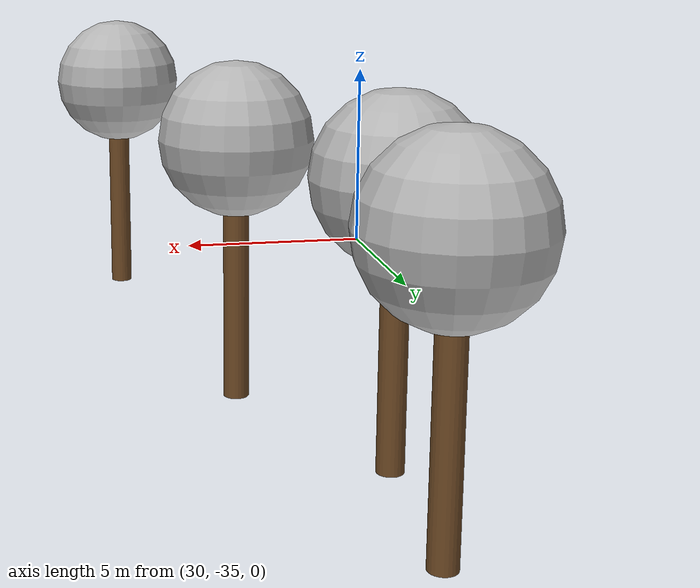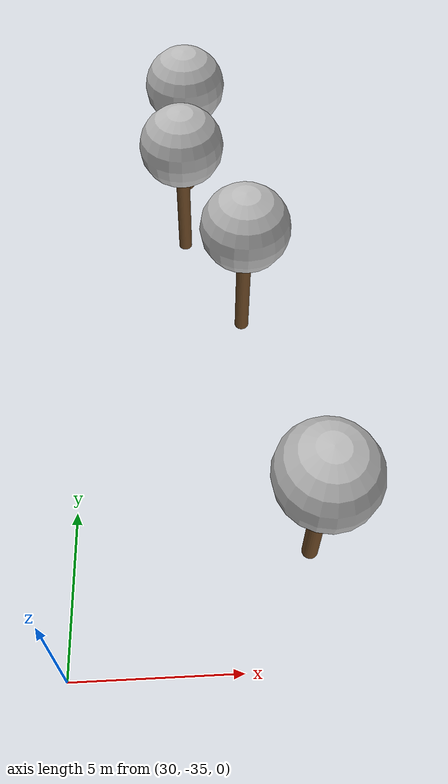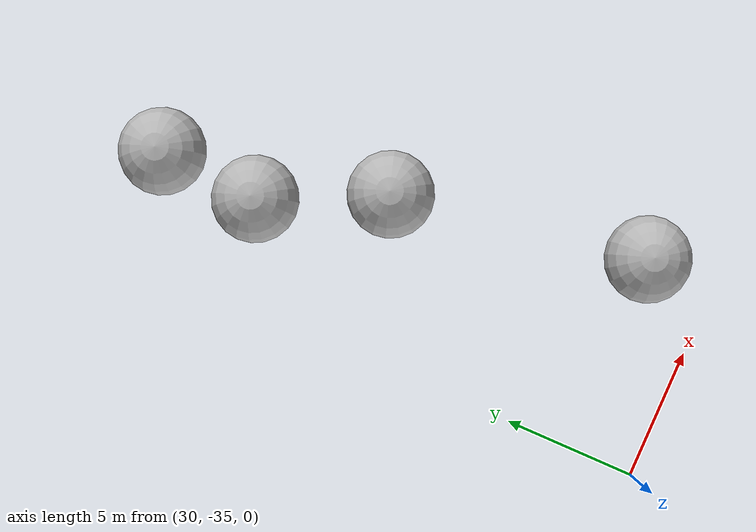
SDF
<sdf version="1.7">
 <world name="default">
  <model name="tree_yellow_1">
   <static>1</static>
   <link name="link">
    <pose>0 0 0.1 0 -0 0</pose>
    <inertial>
     <mass>666</mass>
     <inertia>
      <ixx>0.0861167</ixx>
      <ixy>0</ixy>
      <ixz>0</ixz>
      <iyy>0.0861167</iyy>
      <iyz>0</iyz>
      <izz>0.0861167</izz>
     </inertia>
    </inertial>
    <collision name="collision_trunk">
     <pose>0 0 2 0 -0 0</pose>
     <geometry><cylinder><radius>0.25</radius><length>4</length></cylinder></geometry>
     <surface>
      <contact>
       <poissons_ratio>0.347</poissons_ratio>
       <elastic_modulus>8.8e+09</elastic_modulus>
       <ode><kp>100000</kp><kd>100</kd><max_vel>100</max_vel><min_depth>0.001</min_depth></ode>
      </contact>
      <friction>
       <torsional>
        <coefficient>1</coefficient>
        <use_patch_radius>0</use_patch_radius>
        <surface_radius>0.01</surface_radius>
       </torsional>
      </friction>
     </surface>
    </collision>
    <collision name="collision_treetop">
     <pose>0 0 5.2 0 -0 0</pose>
     <geometry><sphere><radius>1.5</radius></sphere></geometry>
     <surface>
      <contact>
       <poissons_ratio>0.347</poissons_ratio>
       <elastic_modulus>8.8e+09</elastic_modulus>
       <ode><kp>100000</kp><kd>100</kd><max_vel>100</max_vel><min_depth>0.001</min_depth></ode>
      </contact>
      <friction>
       <torsional>
        <coefficient>1</coefficient>
        <use_patch_radius>0</use_patch_radius>
        <surface_radius>0.01</surface_radius>
       </torsional>
      </friction>
     </surface>
    </collision>
    <visual name="trunk">
     <pose>0 0 2 0 -0 0</pose>
     <geometry><cylinder><radius>0.25</radius><length>4</length></cylinder></geometry>
     <material>
      <script>
       <uri>model://MRS_tree_simples_close/scripts</uri>
       <uri>model://MRS_tree_simples_close/materials/textures</uri>
       <name>MRS_tree_simples_close/Trunk</name>
      </script>
     </material>
    </visual>
    <visual name="treetop">
     <pose>0 0 5.2 0 -0 0</pose>
     <geometry><sphere><radius>1.5</radius></sphere></geometry>
     <material>
      <script>
       <uri>model://MRS_tree_simples_close/scripts</uri>
       <uri>model://MRS_tree_simples_close/materials/textures</uri>
       <name>MRS_tree_simples_close/Treetop</name>
      </script>
     </material>
    </visual>
   </link>
   <pose>35.7086 -22.7264 0 0 -0 0</pose>
  </model>
  <model name="tree_green_8">
   <static>1</static>
   <link name="link">
    <pose>0 0 0.1 0 -0 0</pose>
    <inertial>
     <mass>666</mass>
     <inertia>
      <ixx>0.0861167</ixx>
      <ixy>0</ixy>
      <ixz>0</ixz>
      <iyy>0.0861167</iyy>
      <iyz>0</iyz>
      <izz>0.0861167</izz>
     </inertia>
    </inertial>
    <collision name="collision_trunk">
     <pose>0 0 2 0 -0 0</pose>
     <geometry><cylinder><radius>0.25</radius><length>4</length></cylinder></geometry>
     <surface>
      <contact>
       <poissons_ratio>0.347</poissons_ratio>
       <elastic_modulus>8.8e+09</elastic_modulus>
       <ode><kp>100000</kp><kd>100</kd><max_vel>100</max_vel><min_depth>0.001</min_depth></ode>
      </contact>
      <friction>
       <torsional>
        <coefficient>1</coefficient>
        <use_patch_radius>0</use_patch_radius>
        <surface_radius>0.01</surface_radius>
       </torsional>
      </friction>
     </surface>
    </collision>
    <collision name="collision_treetop">
     <pose>0 0 5.2 0 -0 0</pose>
     <geometry><sphere><radius>1.5</radius></sphere></geometry>
     <surface>
      <contact>
       <poissons_ratio>0.347</poissons_ratio>
       <elastic_modulus>8.8e+09</elastic_modulus>
       <ode><kp>100000</kp><kd>100</kd><max_vel>100</max_vel><min_depth>0.001</min_depth></ode>
      </contact>
      <friction>
       <torsional>
        <coefficient>1</coefficient>
        <use_patch_radius>0</use_patch_radius>
        <surface_radius>0.01</surface_radius>
       </torsional>
      </friction>
     </surface>
    </collision>
    <visual name="trunk">
     <pose>0 0 2 0 -0 0</pose>
     <geometry><cylinder><radius>0.25</radius><length>4</length></cylinder></geometry>
     <material>
      <script>
       <uri>model://MRS_tree_simple/scripts</uri>
       <uri>model://MRS_tree_simple/materials/textures</uri>
       <name>MRS_tree_simple/Trunk</name>
      </script>
     </material>
    </visual>
    <visual name="treetop">
     <pose>0 0 5.2 0 -0 0</pose>
     <geometry><sphere><radius>1.5</radius></sphere></geometry>
     <material>
      <script>
       <uri>model://MRS_tree_simple/scripts</uri>
       <uri>model://MRS_tree_simple/materials/textures</uri>
       <name>MRS_tree_simple/Treetop</name>
      </script>
     </material>
    </visual>
   </link>
   <pose>33.9131 -15.066 0 0 -0 0</pose>
  </model>
  <model name="tree_green_9">
   <static>1</static>
   <link name="link">
    <pose>0 0 0.1 0 -0 0</pose>
    <inertial>
     <mass>666</mass>
     <inertia>
      <ixx>0.0861167</ixx>
      <ixy>0</ixy>
      <ixz>0</ixz>
      <iyy>0.0861167</iyy>
      <iyz>0</iyz>
      <izz>0.0861167</izz>
     </inertia>
    </inertial>
    <collision name="collision_trunk">
     <pose>0 0 2 0 -0 0</pose>
     <geometry><cylinder><radius>0.25</radius><length>4</length></cylinder></geometry>
     <surface>
      <contact>
       <poissons_ratio>0.347</poissons_ratio>
       <elastic_modulus>8.8e+09</elastic_modulus>
       <ode><kp>100000</kp><kd>100</kd><max_vel>100</max_vel><min_depth>0.001</min_depth></ode>
      </contact>
      <friction>
       <torsional>
        <coefficient>1</coefficient>
        <use_patch_radius>0</use_patch_radius>
        <surface_radius>0.01</surface_radius>
       </torsional>
      </friction>
     </surface>
    </collision>
    <collision name="collision_treetop">
     <pose>0 0 5.2 0 -0 0</pose>
     <geometry><sphere><radius>1.5</radius></sphere></geometry>
     <surface>
      <contact>
       <poissons_ratio>0.347</poissons_ratio>
       <elastic_modulus>8.8e+09</elastic_modulus>
       <ode><kp>100000</kp><kd>100</kd><max_vel>100</max_vel><min_depth>0.001</min_depth></ode>
      </contact>
      <friction>
       <torsional>
        <coefficient>1</coefficient>
        <use_patch_radius>0</use_patch_radius>
        <surface_radius>0.01</surface_radius>
       </torsional>
      </friction>
     </surface>
    </collision>
    <visual name="trunk">
     <pose>0 0 2 0 -0 0</pose>
     <geometry><cylinder><radius>0.25</radius><length>4</length></cylinder></geometry>
     <material>
      <script>
       <uri>model://MRS_tree_simple/scripts</uri>
       <uri>model://MRS_tree_simple/materials/textures</uri>
       <name>MRS_tree_simple/Trunk</name>
      </script>
     </material>
    </visual>
    <visual name="treetop">
     <pose>0 0 5.2 0 -0 0</pose>
     <geometry><sphere><radius>1.5</radius></sphere></geometry>
     <material>
      <script>
       <uri>model://MRS_tree_simple/scripts</uri>
       <uri>model://MRS_tree_simple/materials/textures</uri>
       <name>MRS_tree_simple/Treetop</name>
      </script>
     </material>
    </visual>
   </link>
   <pose>33.7098 -18.5879 0 0 -0 0</pose>
  </model>
  <model name="tree_green_13">
   <static>1</static>
   <link name="link">
    <pose>0 0 0.1 0 -0 0</pose>
    <inertial>
     <mass>666</mass>
     <inertia>
      <ixx>0.0861167</ixx>
      <ixy>0</ixy>
      <ixz>0</ixz>
      <iyy>0.0861167</iyy>
      <iyz>0</iyz>
      <izz>0.0861167</izz>
     </inertia>
    </inertial>
    <collision name="collision_trunk">
     <pose>0 0 2 0 -0 0</pose>
     <geometry><cylinder><radius>0.25</radius><length>4</length></cylinder></geometry>
     <surface>
      <contact>
       <poissons_ratio>0.347</poissons_ratio>
       <elastic_modulus>8.8e+09</elastic_modulus>
       <ode><kp>100000</kp><kd>100</kd><max_vel>100</max_vel><min_depth>0.001</min_depth></ode>
      </contact>
      <friction>
       <torsional>
        <coefficient>1</coefficient>
        <use_patch_radius>0</use_patch_radius>
        <surface_radius>0.01</surface_radius>
       </torsional>
      </friction>
     </surface>
    </collision>
    <collision name="collision_treetop">
     <pose>0 0 5.2 0 -0 0</pose>
     <geometry><sphere><radius>1.5</radius></sphere></geometry>
     <surface>
      <contact>
       <poissons_ratio>0.347</poissons_ratio>
       <elastic_modulus>8.8e+09</elastic_modulus>
       <ode><kp>100000</kp><kd>100</kd><max_vel>100</max_vel><min_depth>0.001</min_depth></ode>
      </contact>
      <friction>
       <torsional>
        <coefficient>1</coefficient>
        <use_patch_radius>0</use_patch_radius>
        <surface_radius>0.01</surface_radius>
       </torsional>
      </friction>
     </surface>
    </collision>
    <visual name="trunk">
     <pose>0 0 2 0 -0 0</pose>
     <geometry><cylinder><radius>0.25</radius><length>4</length></cylinder></geometry>
     <material>
      <script>
       <uri>model://MRS_tree_simple/scripts</uri>
       <uri>model://MRS_tree_simple/materials/textures</uri>
       <name>MRS_tree_simple/Trunk</name>
      </script>
     </material>
    </visual>
    <visual name="treetop">
     <pose>0 0 5.2 0 -0 0</pose>
     <geometry><sphere><radius>1.5</radius></sphere></geometry>
     <material>
      <script>
       <uri>model://MRS_tree_simple/scripts</uri>
       <uri>model://MRS_tree_simple/materials/textures</uri>
       <name>MRS_tree_simple/Treetop</name>
      </script>
     </material>
    </visual>
   </link>
   <pose>37.2241 -31.5886 0 0 -0 0</pose>
  </model>
 </world>
</sdf>
